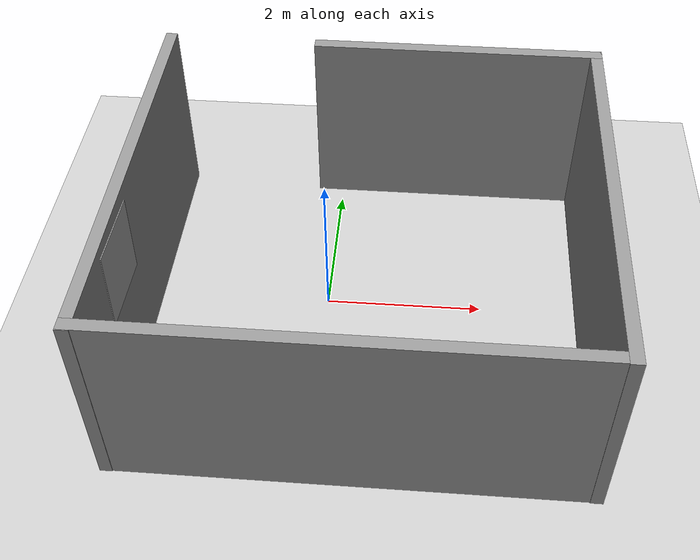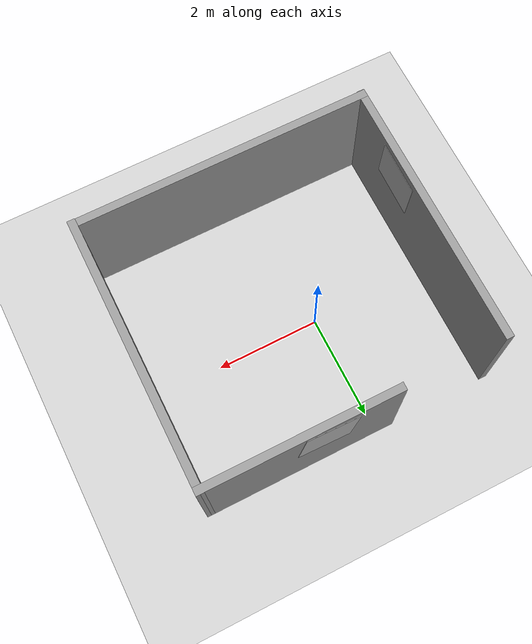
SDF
<sdf version="1.6">
 <world name="default">
  <light name="sun" type="directional">
   <pose>0 0 10 0 -0 0</pose>
   <diffuse>0.8 0.8 0.8 1</diffuse>
   <specular>0.2 0.2 0.2 1</specular>
   <attenuation>
    <range>1000</range>
    <constant>0.9</constant>
    <linear>0.01</linear>
    <quadratic>0.001</quadratic>
   </attenuation>
   <direction>-0.5 0.1 -0.9</direction>
  </light>
  <model name="ground_plane">
   <static>1</static>
   <link name="link">
    <collision name="collision">
     <geometry><plane><normal>0 0 1</normal><size>100 100</size></plane></geometry>
     <surface>
      <contact><collide_bitmask>65535</collide_bitmask></contact>
      <friction><ode><mu>100</mu><mu2>50</mu2></ode></friction>
     </surface>
    </collision>
    <visual name="visual">
     <cast_shadows>0</cast_shadows>
     <geometry><plane><normal>0 0 1</normal><size>100 100</size></plane></geometry>
     <material>
      <script><uri>file://media/materials/scripts/gazebo.material</uri><name>Gazebo/Grey</name></script>
     </material>
    </visual>
   </link>
  </model>
  <gravity>0 0 -9.8</gravity>
  <magnetic_field>6e-06 2.3e-05 -4.2e-05</magnetic_field>
  <atmosphere type="adiabatic"/>
  <physics name="default_physics" default="0" type="ode">
   <max_step_size>0.001</max_step_size>
   <real_time_factor>1</real_time_factor>
   <real_time_update_rate>1000</real_time_update_rate>
  </physics>
  <scene><ambient>0.4 0.4 0.4 1</ambient><background>0.7 0.7 0.7 1</background><shadows>1</shadows></scene>
  <audio><device>default</device></audio>
  <spherical_coordinates>
   <surface_model>EARTH_WGS84</surface_model>
   <latitude_deg>0</latitude_deg>
   <longitude_deg>0</longitude_deg>
   <elevation>0</elevation>
   <heading_deg>0</heading_deg>
  </spherical_coordinates>
  <model name="proj_locland">
   <pose>0.516309 -0.212072 0 0 -0 0</pose>
   <link name="Wall_3">
    <collision name="Wall_3_Collision">
     <geometry><box><size>3.75 0.15 2.5</size></box></geometry>
     <pose>0 0 1.25 0 -0 0</pose>
    </collision>
    <visual name="Wall_3_Visual">
     <pose>0 0 1.25 0 -0 0</pose>
     <geometry><box><size>3.75 0.15 2.5</size></box></geometry>
     <material>
      <script><uri>file://media/materials/scripts/gazebo.material</uri><name>Gazebo/Grey</name></script>
      <ambient>1 1 1 1</ambient>
     </material>
     <meta><layer>0</layer></meta>
    </visual>
    <pose>1.00435 2.51957 0 0 -0 0</pose>
   </link>
   <link name="Wall_4">
    <collision name="Wall_4_Collision">
     <geometry><box><size>5.18914 0.15 2.5</size></box></geometry>
     <pose>0 0 1.25 0 -0 0</pose>
    </collision>
    <visual name="Wall_4_Visual">
     <pose>0 0 1.25 0 -0 0</pose>
     <geometry><box><size>5.18914 0.15 2.5</size></box></geometry>
     <material>
      <script><uri>file://media/materials/scripts/gazebo.material</uri><name>Gazebo/Grey</name></script>
      <ambient>1 1 1 1</ambient>
     </material>
     <meta><layer>0</layer></meta>
    </visual>
    <pose>2.8 -0 0 0 -0 -1.57252</pose>
   </link>
   <link name="Wall_5">
    <collision name="Wall_5_Collision">
     <geometry><box><size>5.75 0.15 2.5</size></box></geometry>
     <pose>0 0 1.25 0 -0 0</pose>
    </collision>
    <visual name="Wall_5_Visual">
     <pose>0 0 1.25 0 -0 0</pose>
     <geometry><box><size>5.75 0.15 2.5</size></box></geometry>
     <material>
      <script><uri>file://media/materials/scripts/gazebo.material</uri><name>Gazebo/Grey</name></script>
      <ambient>1 1 1 1</ambient>
     </material>
     <meta><layer>0</layer></meta>
    </visual>
    <pose>-0.004348 -2.51087 0 0 -0 3.14159</pose>
   </link>
   <link name="Wall_6">
    <collision name="Wall_6_Collision">
     <geometry><box><size>5.18914 0.15 2.5</size></box></geometry>
     <pose>0 0 1.25 0 -0 0</pose>
    </collision>
    <visual name="Wall_6_Visual">
     <pose>0 0 1.25 0 -0 0</pose>
     <geometry><box><size>5.18914 0.15 2.5</size></box></geometry>
     <material>
      <script><uri>file://media/materials/scripts/gazebo.material</uri><name>Gazebo/Grey</name></script>
      <ambient>1 1 1 1</ambient>
     </material>
     <meta><layer>0</layer></meta>
    </visual>
    <pose>-2.8 -0 0 0 -0 1.56907</pose>
   </link>
   <static>1</static>
  </model>
  <model name="Apriltag36_11_00000">
   <link name="main">
    <visual name="main_Visual">
     <geometry><box><size>1 1 0.01</size></box></geometry>
     <material>
      <script>
       <uri>model://Apriltag36_11_00000/materials/scripts</uri>
       <uri>model://Apriltag36_11_00000/materials/textures</uri>
       <name>Apriltag36_11_00000</name>
      </script>
     </material>
    </visual>
   </link>
   <static>1</static>
   <pose>1.03736 2.3875 1.85502 -1.5708 -0.140389 -0</pose>
  </model>
  <model name="Apriltag36_11_00003">
   <link name="main">
    <visual name="main_Visual">
     <geometry><box><size>1 1 0.01</size></box></geometry>
     <material>
      <script>
       <uri>model://Apriltag36_11_00003/materials/scripts</uri>
       <uri>model://Apriltag36_11_00003/materials/textures</uri>
       <name>Apriltag36_11_00003</name>
      </script>
     </material>
    </visual>
   </link>
   <static>1</static>
   <pose>-2.20546 -1.23541 1.84126 -1.5708 -1.52206 1.56907</pose>
  </model>
 </world>
</sdf>
